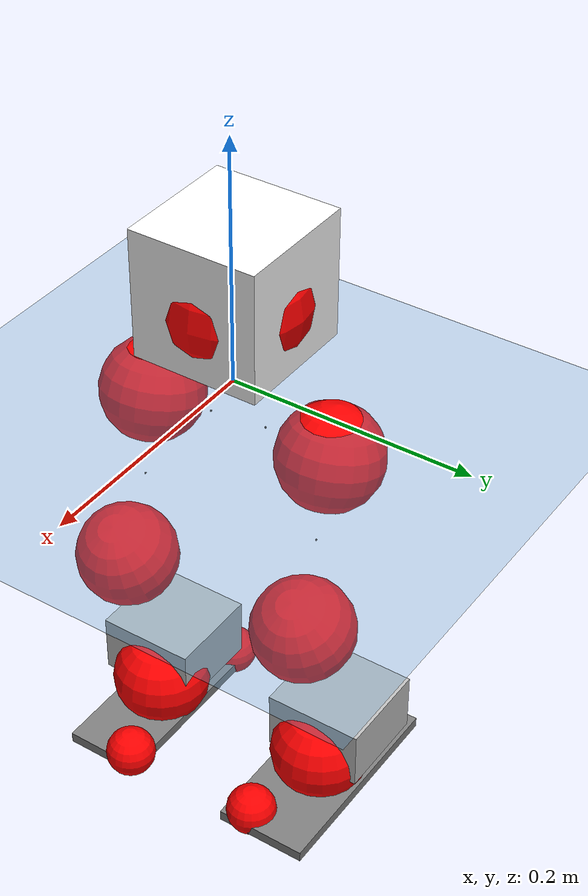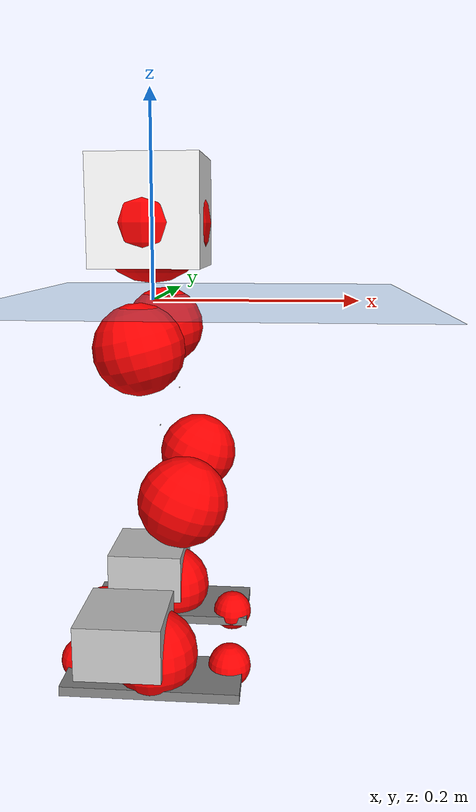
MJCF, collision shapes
<mujoco model="pi_12dof_release_v1">
  <compiler angle="radian" assetdir="assets" balanceinertia="true" inertiafromgeom="false"/>

  <option timestep="0.005" density="1.2" viscosity="2e-05"/>

  <size nkey="1"/>

  <visual>
    <quality shadowsize="8192"/>
    <map shadowclip="0.5"/>
  </visual>

  <default>
    <default class="/">
      <joint armature="0.01" damping="0.01" frictionloss="0.01"/>
      <geom contype="0" conaffinity="0" group="1" solref="-1000 -80"/>
      <site size="0.01 0.005 0.005" group="5"/>
      <general forcelimited="true" biastype="affine" gainprm="20" biasprm="0 -20 -0.5"/>
      <default class="foot">
        <geom size="0.0845 0.036 0.005" type="box" condim="6" group="4" priority="1" friction="0.9 0.2 0.2" solimp="0.015 1 0.005"/>
      </default>
      <default class="reward_collision_sphere">
        <geom group="5" rgba="1 0 0 1"/>
      </default>
    </default>
  </default>

  <asset>
    <texture type="skybox" colorspace="auto" name="//unnamed_texture_0" builtin="gradient" rgb1="0.95 0.95 0.95" rgb2="0.95 0.95 0.95" width="100" height="600"/>
    <texture type="2d" colorspace="auto" name="texplane" builtin="checker" rgb1="0.345 0.575 0.748" rgb2="0.345 0.575 0.748" markrgb="1 1 1" width="512" height="512"/>
    <material name="MatPlane" class="/" texture="texplane" texuniform="true" texrepeat="2 2" specular="0.9"/>
    <mesh name="baselink_1" class="/" file="baselink_1.STL"/>
    <mesh name="r_hip_pitch_link" class="/" file="r_hip_pitch_link.STL"/>
    <mesh name="r_hip_roll_link" class="/" file="r_hip_roll_link.STL"/>
    <mesh name="r_thigh_link" class="/" file="r_thigh_link.STL"/>
    <mesh name="r_calf_link" class="/" file="r_calf_link.STL"/>
    <mesh name="r_ankle_pitch_link" class="/" file="r_ankle_pitch_link.STL"/>
    <mesh name="r_ankle_roll_link" class="/" file="r_ankle_roll_link.STL"/>
    <mesh name="l_hip_pitch_link" class="/" file="l_hip_pitch_link.STL"/>
    <mesh name="l_hip_roll_link" class="/" file="l_hip_roll_link.STL"/>
    <mesh name="l_thigh_link" class="/" file="l_thigh_link.STL"/>
    <mesh name="l_calf_link" class="/" file="l_calf_link.STL"/>
    <mesh name="l_ankle_pitch_link" class="/" file="l_ankle_pitch_link.STL"/>
    <mesh name="l_ankle_roll_link" class="/" file="l_ankle_roll_link.STL"/>
  </asset>

  <worldbody>
    <geom name="floor" class="/" size="100 100 0.125" type="plane" group="0" material="MatPlane"/>
    <light name="toplight_shadow" class="/" pos="0 0 5" dir="0.0990148 0.0990148 -0.990148" type="directional" ambient="0.04 0.04 0.04" diffuse="0.55 0.55 0.55" specular="0.12 0.12 0.12"/>
    <light name="toplight_fill" class="/" pos="0 0 5" dir="0.0990148 0.0990148 -0.990148" type="directional" castshadow="false" ambient="0.04 0.04 0.04" diffuse="0.3 0.3 0.3" specular="0.08 0.08 0.08"/>
    <body name="trunk" pos="-0.000728236 0.00268947 8.8256e-05" quat="0.999999 -0.000499778 0.000302218 -0.000957216">
      <inertial pos="0.00254025 -0.00291386 0.0423991" quat="0.693594 0.0199103 0.00478192 0.720075" mass="2.56145" diaginertia="0.0154174 0.00906912 0.00541284"/>
      <joint name="//unnamed_joint_0" type="free"/>
      <geom name="//unnamed_geom_1" class="/" type="mesh" density="0" rgba="1 1 1 1" mesh="baselink_1"/>
      <geom name="//unnamed_geom_2" class="/" size="0.0525058 0.0525058 0.0525058" pos="0 0 0.0844668" type="box" rgba="1 1 1 1"/>
      <geom name="//unnamed_geom_3" class="reward_collision_sphere" size="0.0577564" pos="0 0 0.0739084"/>
      <site name="imu" class="/" pos="0.0122163 -0.005337 0.00971099" size="0.0105012"/>
      <camera name="track" class="/" pos="0 -1.99455 0" quat="0.707107 0.707107 0 0" mode="trackcom"/>
      <camera name="ego_camera" class="/" pos="0.0822931 0 0.19005" quat="-0.5 -0.5 0.5 0.5"/>
      <body name="r_hip_pitch_link" pos="0.00101149 -0.0233663 -0.0366076" quat="0.992205 -0.000121751 -0.124619 2.5805e-05">
        <inertial pos="0.0025042 -0.0585015 -0.000257519" quat="-0.0181181 0.705363 -0.0268251 0.708107" mass="0.421478" diaginertia="0.000169993 9.62851e-05 0.000108881"/>
        <joint name="r_hip_pitch_joint" class="/" pos="0 0 0" axis="-0.00142873 -0.999998 -0.00139287" range="-1.7789 1.27991" armature="0.0106336" damping="0.00237174" frictionloss="0.0104734"/>
        <geom name="//unnamed_geom_4" class="/" type="mesh" density="0" rgba="0.75294 0.75294 0.75294 1" mesh="r_hip_pitch_link"/>
        <geom name="//unnamed_geom_5" class="/" size="0.000525058 0.000525058 0.000525058" type="box" rgba="0.75294 0.75294 0.75294 1"/>
        <body name="r_hip_roll_link" pos="-0.00134259 -0.0550966 -0.00165604" quat="0.999999 -0.000915103 0.000477642 0.000869978">
          <inertial pos="-0.00171156 0.000645361 -0.061764" quat="0.70399 -0.0875893 -0.0734745 0.700948" mass="0.432092" diaginertia="0.00050823 0.000265294 0.000164691"/>
          <joint name="r_hip_roll_joint" class="/" pos="0 0 0" axis="-0.999999 0.00105559 -0.000268502" range="-0.0984102 0.487239" armature="0.0118319" damping="0" frictionloss="0.00993906"/>
          <geom name="//unnamed_geom_6" class="/" type="mesh" density="0" rgba="0.75294 0.75294 0.75294 1" mesh="r_hip_roll_link"/>
          <geom name="//unnamed_geom_7" class="/" size="0.000525058 0.000525058 0.000525058" type="box" rgba="0.75294 0.75294 0.75294 1"/>
          <geom name="//unnamed_geom_8" class="reward_collision_sphere" size="0.0420047"/>
          <body name="r_thigh_link" pos="1.42753e-05 0.00271703 -0.0724077" quat="1 -0.000183924 -0.000251275 0.000339006">
            <inertial pos="0.00273272 -0.00171394 -0.0504622" quat="0.739217 0.673436 -0.00552609 0.00346718" mass="0.136871" diaginertia="0.000201574 9.52228e-05 7.79059e-05"/>
            <joint name="r_thigh_joint" class="/" pos="0 0 0" axis="-0.00729045 0.00876578 -0.999935" stiffness="0.0169877" range="-0.279403 0.558896" armature="0.0103703" damping="0.00377497" frictionloss="0.00915692"/>
            <geom name="//unnamed_geom_9" class="/" type="mesh" density="0" rgba="0.75294 0.75294 0.75294 1" mesh="r_thigh_link"/>
            <geom name="//unnamed_geom_10" class="/" size="0.000525058 0.000525058 0.000525058" type="box" rgba="0.75294 0.75294 0.75294 1"/>
            <body name="r_calf_link" pos="0.00255814 -0.00543954 -0.0741488" quat="0.947626 2.86914e-05 0.319381 7.73326e-05">
              <inertial pos="-0.00234317 0.00188306 -0.0723424" quat="0.999925 -0.011564 0.00337337 0.0023925" mass="0.935524" diaginertia="0.00550362 0.00331173 0.000224264"/>
              <joint name="r_calf_joint" class="/" pos="0 0 0" axis="0.00816717 -0.999923 -0.00930254" range="-1.65485 0.648486" armature="0.0116675" damping="0" frictionloss="0.00974166"/>
              <geom name="//unnamed_geom_11" class="/" type="mesh" density="0" rgba="0.75294 0.75294 0.75294 1" mesh="r_calf_link"/>
              <geom name="//unnamed_geom_12" class="/" size="0.000525058 0.000525058 0.000525058" type="box" rgba="0.75294 0.75294 0.75294 1"/>
              <geom name="//unnamed_geom_13" class="reward_collision_sphere" size="0.0420047"/>
              <body name="r_ankle_pitch_link" pos="0.000236228 -0.000527812 -0.146055" quat="0.980065 6.49633e-05 -0.198679 0.000128835">
                <inertial pos="0.00285029 0.000346044 0.00197622" quat="0.0040109 0.70764 -0.00324265 0.706555" mass="0.209966" diaginertia="0.000491369 0.000230006 0.000162955"/>
                <joint name="r_ankle_pitch_joint" class="/" pos="0 0 0" axis="0.00505168 -0.99996 -0.00741599" stiffness="0.00275134" range="-1.24366 0.508217" armature="0.0105543" damping="0.0202271" frictionloss="0.00989473"/>
                <geom name="//unnamed_geom_14" class="/" type="mesh" density="0" rgba="0.75294 0.75294 0.75294 1" mesh="r_ankle_pitch_link"/>
                <geom name="//unnamed_geom_15" class="/" size="0.0409546 0.0420047 0.0262529" type="box" rgba="0.75294 0.75294 0.75294 1"/>
                <body name="r_ankle_roll_link" pos="0.0821369 0.00600494 -0.00040019" quat="0.999999 4.02333e-05 0.000539288 -0.000992177">
                  <inertial pos="-0.0292866 -0.00141624 -0.0153" quat="0.556473 0.427558 0.440952 0.559548" mass="0.591298" diaginertia="0.00182384 0.00099742 0.000355357"/>
                  <joint name="r_ankle_roll_joint" class="/" pos="0 0 0" axis="-0.999929 0.00534509 -0.0106317" range="-0.156904 0.127185" armature="0.0117537" damping="0" frictionloss="0.009792"/>
                  <geom name="//unnamed_geom_16" class="/" type="mesh" density="0" rgba="0.75294 0.75294 0.75294 1" mesh="r_ankle_roll_link"/>
                  <geom name="//unnamed_geom_17" class="/" type="mesh" rgba="0.75294 0.75294 0.75294 1" mesh="r_ankle_roll_link"/>
                  <geom name="right_foot" class="foot" size="0.0853561 0.0331231 0.00464799" pos="-0.0559593 0 -0.0464567"/>
                  <geom name="//unnamed_geom_19" class="reward_collision_sphere" size="0.0420047" pos="-0.0548621 0 -0.0211167"/>
                  <geom name="//unnamed_geom_20" class="reward_collision_sphere" size="0.0210023" pos="0.0164586 0.0199455 -0.0422334"/>
                  <geom name="//unnamed_geom_21" class="reward_collision_sphere" size="0.0210023" pos="-0.131669 0.0199455 -0.0422334"/>
                  <site name="right_foot" class="foot" pos="-0.0559593 0 -0.0464567" size="0.0105012"/>
                </body>
              </body>
            </body>
          </body>
        </body>
      </body>
      <body name="l_hip_pitch_link" pos="-0.00385402 0.022749 -0.0354405" quat="0.992308 0.000171487 -0.12379 -0.000135681">
        <inertial pos="-0.000670856 0.0570986 -6.30909e-05" quat="-0.0366052 0.705466 0.0297721 0.707171" mass="0.439239" diaginertia="0.000198912 0.000104733 0.000133166"/>
        <joint name="l_hip_pitch_joint" class="/" pos="0 0 0" axis="0.00613982 0.999851 -0.0161609" stiffness="0.0102416" range="-1.223 1.77981" armature="0.0115359" damping="0.0266128" frictionloss="0.0118036"/>
        <geom name="//unnamed_geom_22" class="/" type="mesh" density="0" rgba="0.75294 0.75294 0.75294 1" mesh="l_hip_pitch_link"/>
        <geom name="//unnamed_geom_23" class="/" size="0.000525058 0.000525058 0.000525058" type="box" rgba="0.75294 0.75294 0.75294 1"/>
        <body name="l_hip_roll_link" pos="0.00219604 0.0586481 -0.000514168" quat="0.999999 -0.00100641 -0.000475311 0.000822868">
          <inertial pos="0.00138048 -0.00183344 -0.0649032" quat="0.698304 -0.0769534 -0.0756692 0.707618" mass="0.467422" diaginertia="0.000527464 0.000276496 0.000176628"/>
          <joint name="l_hip_roll_joint" class="/" pos="0 0 0" axis="-0.999946 0.00964216 -0.0039201" range="-0.522407 0.164717" armature="0.0105493" damping="0" frictionloss="0.00940048"/>
          <geom name="//unnamed_geom_24" class="/" type="mesh" density="0" rgba="0.75294 0.75294 0.75294 1" mesh="l_hip_roll_link"/>
          <geom name="//unnamed_geom_25" class="/" size="0.000525058 0.000525058 0.000525058" type="box" rgba="0.75294 0.75294 0.75294 1"/>
          <geom name="//unnamed_geom_26" class="reward_collision_sphere" size="0.0420047"/>
          <body name="l_thigh_link" pos="-0.00168232 -0.000464163 -0.0703905" quat="0.999999 0.000756162 0.000990426 -0.000417712">
            <inertial pos="0.0017605 -0.00153647 -0.0534671" quat="0.671371 0.741055 -0.00587358 0.00793408" mass="0.131285" diaginertia="0.00019952 8.97136e-05 7.46203e-05"/>
            <joint name="l_thigh_joint" class="/" pos="0 0 0" axis="0.00715642 -0.0101814 -0.999923" range="-0.568995 0.282199" armature="0.0101888" damping="0.00649088" frictionloss="0.0106907"/>
            <geom name="//unnamed_geom_27" class="/" type="mesh" density="0" rgba="0.75294 0.75294 0.75294 1" mesh="l_thigh_link"/>
            <geom name="//unnamed_geom_28" class="/" size="0.000525058 0.000525058 0.000525058" type="box" rgba="0.75294 0.75294 0.75294 1"/>
            <body name="l_calf_link" pos="0.00145108 0.00280616 -0.0764799" quat="0.947638 0.00105566 0.319344 -0.000801286">
              <inertial pos="0.00154395 0.0057967 -0.0731051" quat="0.999978 -0.00521263 -0.00296841 0.00295682" mass="0.922651" diaginertia="0.00562568 0.00344733 0.000229276"/>
              <joint name="l_calf_joint" class="/" pos="0 0 0" axis="-0.00370631 0.999992 -0.00112589" range="-0.6239 1.70576" armature="0.0103172" damping="0.00776042" frictionloss="0.0105069"/>
              <geom name="//unnamed_geom_29" class="/" type="mesh" density="0" rgba="0.75294 0.75294 0.75294 1" mesh="l_calf_link"/>
              <geom name="//unnamed_geom_30" class="/" size="0.000525058 0.000525058 0.000525058" type="box" rgba="0.75294 0.75294 0.75294 1"/>
              <geom name="//unnamed_geom_31" class="reward_collision_sphere" size="0.0420047"/>
              <body name="l_ankle_pitch_link" pos="0.0017133 -0.000556195 -0.149024" quat="0.980068 0.00116233 -0.198657 0.000722691">
                <inertial pos="0.00813761 -0.000715308 0.00231154" quat="-0.00640027 0.711482 -0.00945511 0.702612" mass="0.195851" diaginertia="0.00048804 0.000216636 0.000149891"/>
                <joint name="l_ankle_pitch_joint" class="/" pos="0 0 0" axis="-0.0133143 0.99991 -0.00188036" stiffness="0.0103304" range="-0.476721 1.33639" armature="0.00906855" damping="0.00812632" frictionloss="0.011439"/>
                <geom name="//unnamed_geom_32" class="/" type="mesh" density="0" rgba="0.75294 0.75294 0.75294 1" mesh="l_ankle_pitch_link"/>
                <geom name="//unnamed_geom_33" class="/" size="0.0409546 0.0420047 0.0262529" type="box" rgba="0.75294 0.75294 0.75294 1"/>
                <body name="l_ankle_roll_link" pos="0.0810719 -0.00112214 -0.000592741" quat="1 -0.000133301 -0.000209742 -0.000384917">
                  <inertial pos="-0.0256106 0.0025453 -0.0168549" quat="0.558964 0.430447 0.435372 0.559219" mass="0.597032" diaginertia="0.0017577 0.0010083 0.000371065"/>
                  <joint name="l_ankle_roll_joint" class="/" pos="0 0 0" axis="-0.999909 0.011582 -0.00693888" range="-0.112872 0.117804" armature="0.0111307" damping="0.00237351" frictionloss="0.0102134"/>
                  <geom name="//unnamed_geom_34" class="/" type="mesh" density="0" rgba="0.75294 0.75294 0.75294 1" mesh="l_ankle_roll_link"/>
                  <geom name="//unnamed_geom_35" class="/" type="mesh" rgba="0.75294 0.75294 0.75294 1" mesh="l_ankle_roll_link"/>
                  <geom name="left_foot" class="foot" size="0.0894747 0.0389808 0.00465079" pos="-0.0559593 0 -0.0464567"/>
                  <geom name="//unnamed_geom_37" class="reward_collision_sphere" size="0.0420047" pos="-0.0548621 0 -0.0211167"/>
                  <geom name="//unnamed_geom_38" class="reward_collision_sphere" size="0.0210023" pos="0.0164586 -0.0199455 -0.0422334"/>
                  <geom name="//unnamed_geom_39" class="reward_collision_sphere" size="0.0210023" pos="-0.131669 -0.0199455 -0.0422334"/>
                  <site name="left_foot" class="foot" pos="-0.0559593 0 -0.0464567" size="0.0105012"/>
                </body>
              </body>
            </body>
          </body>
        </body>
      </body>
    </body>
  </worldbody>

  <contact>
    <pair class="/" geom1="floor" geom2="right_foot" name="//unnamed_contact_1"/>
    <pair class="/" geom1="floor" geom2="left_foot" name="//unnamed_contact_0"/>
  </contact>

  <actuator>
    <general name="r_hip_pitch_joint" class="/" joint="r_hip_pitch_joint" forcerange="-24.305 24.305" gainprm="21.3179" biasprm="0 -21.3179 -0.50659"/>
    <general name="r_hip_roll_joint" class="/" joint="r_hip_roll_joint" forcerange="-21.192 21.192" gainprm="21.3179" biasprm="0 -21.3179 -0.50659"/>
    <general name="r_thigh_joint" class="/" joint="r_thigh_joint" forcerange="-19.9061 19.9061" gainprm="21.3179" biasprm="0 -21.3179 -0.50659"/>
    <general name="r_calf_joint" class="/" joint="r_calf_joint" forcerange="-20.2834 20.2834" gainprm="21.3179" biasprm="0 -21.3179 -0.50659"/>
    <general name="r_ankle_pitch_joint" class="/" joint="r_ankle_pitch_joint" forcerange="-20.0368 20.0368" gainprm="21.3179" biasprm="0 -21.3179 -0.50659"/>
    <general name="r_ankle_roll_joint" class="/" joint="r_ankle_roll_joint" forcerange="-24.1248 24.1248" gainprm="21.3179" biasprm="0 -21.3179 -0.50659"/>
    <general name="l_hip_pitch_joint" class="/" joint="l_hip_pitch_joint" forcerange="-22.0586 22.0586" gainprm="21.3179" biasprm="0 -21.3179 -0.50659"/>
    <general name="l_hip_roll_joint" class="/" joint="l_hip_roll_joint" forcerange="-22.1031 22.1031" gainprm="21.3179" biasprm="0 -21.3179 -0.50659"/>
    <general name="l_thigh_joint" class="/" joint="l_thigh_joint" forcerange="-24.2505 24.2505" gainprm="21.3179" biasprm="0 -21.3179 -0.50659"/>
    <general name="l_calf_joint" class="/" joint="l_calf_joint" forcerange="-22.2852 22.2852" gainprm="21.3179" biasprm="0 -21.3179 -0.50659"/>
    <general name="l_ankle_pitch_joint" class="/" joint="l_ankle_pitch_joint" forcerange="-22.6626 22.6626" gainprm="21.3179" biasprm="0 -21.3179 -0.50659"/>
    <general name="l_ankle_roll_joint" class="/" joint="l_ankle_roll_joint" forcerange="-23.6968 23.6968" gainprm="21.3179" biasprm="0 -21.3179 -0.50659"/>
  </actuator>

  <sensor>
    <gyro site="imu" name="imu_angular_velocity"/>
    <velocimeter site="imu" name="imu_linear_velocity"/>
    <framelinvel objtype="site" objname="left_foot" name="left_foot_global_linear_velocity"/>
    <framelinvel objtype="site" objname="right_foot" name="right_foot_global_linear_velocity"/>
  </sensor>

  <keyframe>
    <key name="home" qpos="0 0 0.291 1 0 0 0 0.4 0 0 -0.8 0.4 0 -0.4 0 0 0.8 -0.4 0"/>
  </keyframe>
</mujoco>
